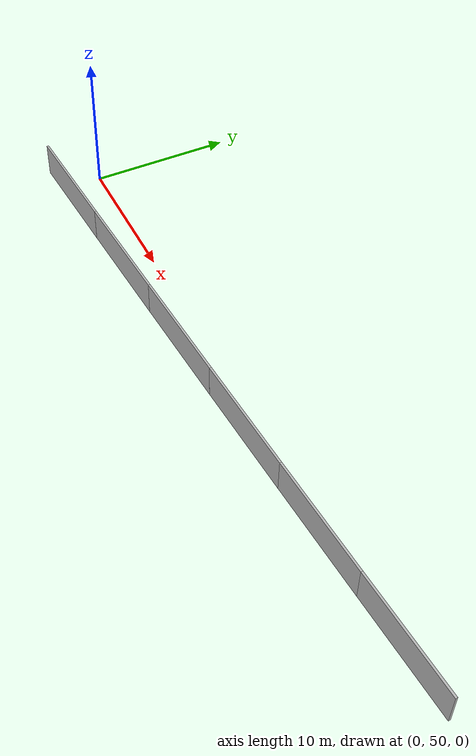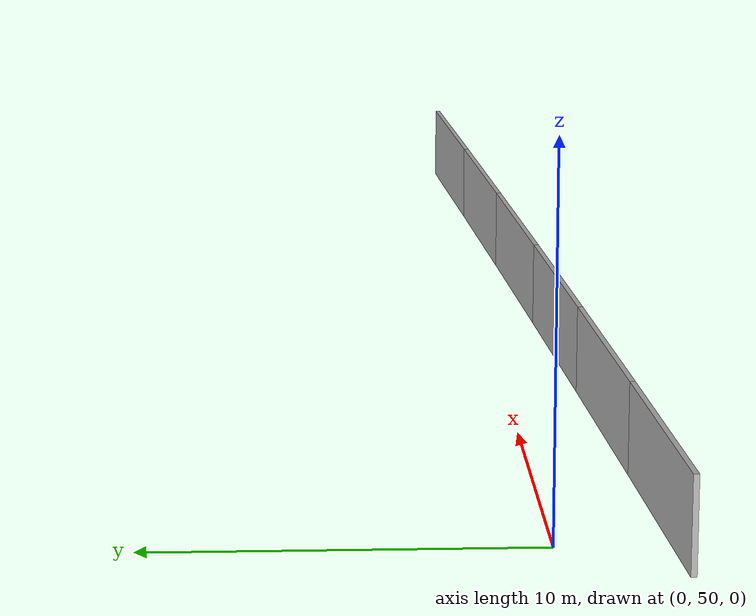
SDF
<?xml version="1.0" ?>
<sdf version="1.6">
  <model name="sps_4801">
    <pose frame="">0 0 0 0 -0 0</pose>
    <static>1</static>
    <self_collide>0</self_collide>
    <allow_auto_disable>0</allow_auto_disable>
    <link name="Wall9041">
      <kinematic>0</kinematic>
      <gravity>1</gravity>
      <self_collide>0</self_collide>
      <collision name="collision">
        <geometry>
          <box>
            <size>8.26138 0.15 2.5</size>
          </box>
        </geometry>
        <pose frame="">0 0 0 0 -0 0</pose>
      </collision>
      <visual name="visual">
        <geometry>
          <box>
            <size>8.26138 0.15 2.5</size>
          </box>
        </geometry>
        <pose frame="">0 0 0 0 -0 0</pose>
        <cast_shadows>1</cast_shadows>
        <transparency>0.0</transparency>
      </visual>
      <pose frame="">1.81695 47.189 1.25 0 -0 0.0556383</pose>
    </link>
    <link name="Wall9042">
      <kinematic>0</kinematic>
      <gravity>1</gravity>
      <self_collide>0</self_collide>
      <collision name="collision">
        <geometry>
          <box>
            <size>8.26169 0.15 2.5</size>
          </box>
        </geometry>
        <pose frame="">0 0 0 0 -0 0</pose>
      </collision>
      <visual name="visual">
        <geometry>
          <box>
            <size>8.26169 0.15 2.5</size>
          </box>
        </geometry>
        <pose frame="">0 0 0 0 -0 0</pose>
        <cast_shadows>1</cast_shadows>
        <transparency>0.0</transparency>
      </visual>
      <pose frame="">10.0651 47.6581 1.25 0 -0 0.0579819</pose>
    </link>
    <link name="Wall9043">
      <kinematic>0</kinematic>
      <gravity>1</gravity>
      <self_collide>0</self_collide>
      <collision name="collision">
        <geometry>
          <box>
            <size>8.26164 0.15 2.5</size>
          </box>
        </geometry>
        <pose frame="">0 0 0 0 -0 0</pose>
      </collision>
      <visual name="visual">
        <geometry>
          <box>
            <size>8.26164 0.15 2.5</size>
          </box>
        </geometry>
        <pose frame="">0 0 0 0 -0 0</pose>
        <cast_shadows>1</cast_shadows>
        <transparency>0.0</transparency>
      </visual>
      <pose frame="">18.3123 48.1468 1.25 0 -0 0.0603874</pose>
    </link>
    <link name="Wall9044">
      <kinematic>0</kinematic>
      <gravity>1</gravity>
      <self_collide>0</self_collide>
      <collision name="collision">
        <geometry>
          <box>
            <size>8.26167 0.15 2.5</size>
          </box>
        </geometry>
        <pose frame="">0 0 0 0 -0 0</pose>
      </collision>
      <visual name="visual">
        <geometry>
          <box>
            <size>8.26167 0.15 2.5</size>
          </box>
        </geometry>
        <pose frame="">0 0 0 0 -0 0</pose>
        <cast_shadows>1</cast_shadows>
        <transparency>0.0</transparency>
      </visual>
      <pose frame="">26.5583 48.655 1.25 0 -0 0.0627188</pose>
    </link>
    <link name="Wall9045">
      <kinematic>0</kinematic>
      <gravity>1</gravity>
      <self_collide>0</self_collide>
      <collision name="collision">
        <geometry>
          <box>
            <size>8.26171 0.15 2.5</size>
          </box>
        </geometry>
        <pose frame="">0 0 0 0 -0 0</pose>
      </collision>
      <visual name="visual">
        <geometry>
          <box>
            <size>8.26171 0.15 2.5</size>
          </box>
        </geometry>
        <pose frame="">0 0 0 0 -0 0</pose>
        <cast_shadows>1</cast_shadows>
        <transparency>0.0</transparency>
      </visual>
      <pose frame="">34.8032 49.1827 1.25 0 -0 0.065117</pose>
    </link>
    <link name="Wall9046">
      <kinematic>0</kinematic>
      <gravity>1</gravity>
      <self_collide>0</self_collide>
      <collision name="collision">
        <geometry>
          <box>
            <size>8.26158 0.15 2.5</size>
          </box>
        </geometry>
        <pose frame="">0 0 0 0 -0 0</pose>
      </collision>
      <visual name="visual">
        <geometry>
          <box>
            <size>8.26158 0.15 2.5</size>
          </box>
        </geometry>
        <pose frame="">0 0 0 0 -0 0</pose>
        <cast_shadows>1</cast_shadows>
        <transparency>0.0</transparency>
      </visual>
      <pose frame="">43.0467 49.7299 1.25 0 -0 0.0674503</pose>
    </link>
  </model>
</sdf>
